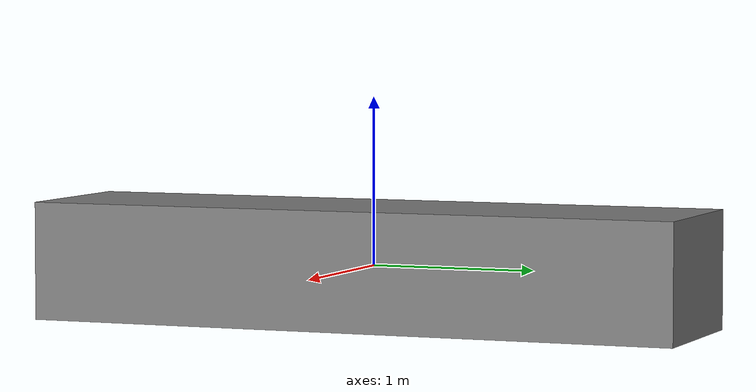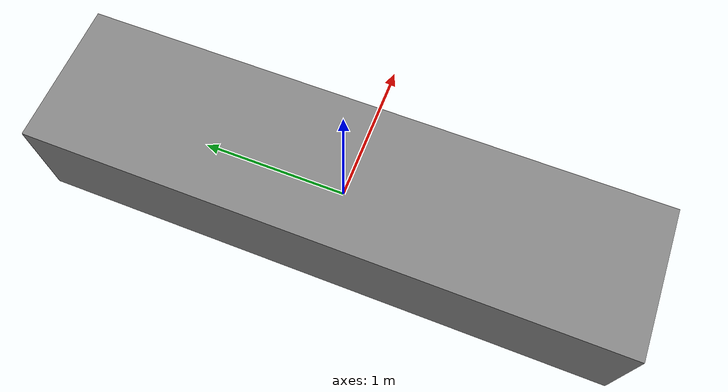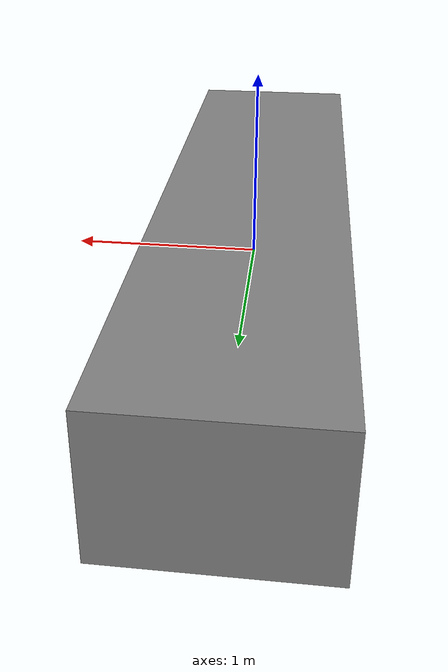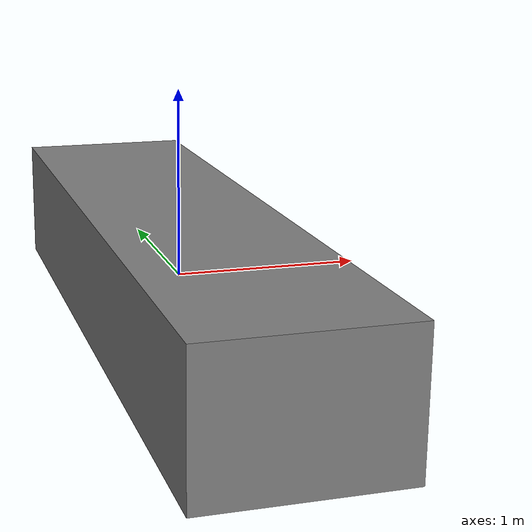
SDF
<?xml version="1.0"?>
<sdf version="1.7">
  <model name="conveyor">
    <link name="conveyor_body">
      <visual name="conveyor_visual">
        <pose>0 0 0 0 0 0</pose>
        <geometry>
          <box>
            <size>1.0 4 0.71</size>
          </box>
        </geometry>
        <material>
          <diffuse>0.5 0.5 0.5 1.0</diffuse>
        </material>
      </visual>
      <collision name="conveyor_collision">
        <pose>0 0 0 0 0 0</pose>
        <geometry>
          <box>
            <size>1.0 4 0.71</size>
          </box>
        </geometry>
      </collision>
    </link>
  </model>
</sdf>
